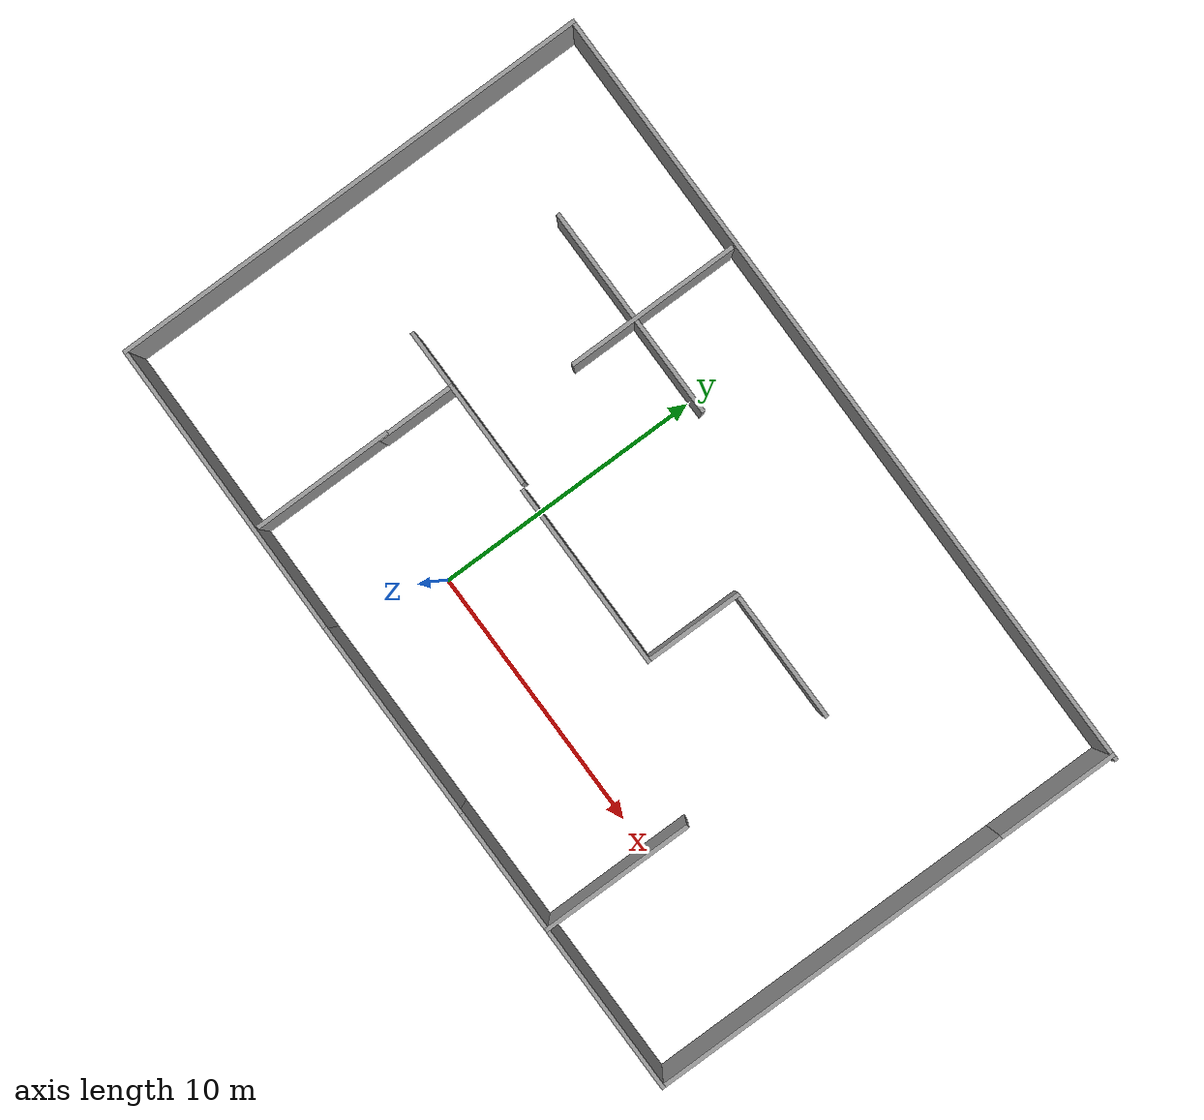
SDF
<?xml version='1.0'?>
<sdf version='1.6'>
  <model name='demo1'>
    <pose frame=''>2.76906 5.13602 0 0 -0 0</pose>
    <link name='Wall_0'>
      <collision name='Wall_0_Collision'>
        <geometry>
          <box>
            <size>7.5 0.15 2.5</size>
          </box>
        </geometry>
        <pose frame=''>0 0 1.25 0 -0 0</pose>
      </collision>
      <visual name='Wall_0_Visual'>
        <pose frame=''>0 0 1.25 0 -0 0</pose>
        <geometry>
          <box>
            <size>7.5 0.15 2.5</size>
          </box>
        </geometry>
        <material>
          <script>
            <uri>file://media/materials/scripts/gazebo.material</uri>
            <name>Gazebo/Grey</name>
          </script>
          <ambient>1 1 1 1</ambient>
        </material>
        <meta>
          <layer>0</layer>
        </meta>
      </visual>
      <pose frame=''>-0.044057 -9.08601 0 0 -0 0</pose>
    </link>
    <link name='Wall_11'>
      <collision name='Wall_11_Collision'>
        <geometry>
          <box>
            <size>7 0.15 2.5</size>
          </box>
        </geometry>
        <pose frame=''>0 0 1.25 0 -0 0</pose>
      </collision>
      <visual name='Wall_11_Visual'>
        <pose frame=''>0 0 1.25 0 -0 0</pose>
        <geometry>
          <box>
            <size>7 0.15 2.5</size>
          </box>
        </geometry>
        <material>
          <script>
            <uri>file://media/materials/scripts/gazebo.material</uri>
            <name>Gazebo/Grey</name>
          </script>
          <ambient>1 1 1 1</ambient>
        </material>
        <meta>
          <layer>0</layer>
        </meta>
      </visual>
      <pose frame=''>-0.119481 -1.25325 0 0 -0 0</pose>
    </link>
    <link name='Wall_12'>
      <collision name='Wall_12_Collision'>
        <geometry>
          <box>
            <size>3.75 0.15 2.5</size>
          </box>
        </geometry>
        <pose frame=''>0 0 1.25 0 -0 0</pose>
      </collision>
      <visual name='Wall_12_Visual'>
        <pose frame=''>0 0 1.25 0 -0 0</pose>
        <geometry>
          <box>
            <size>3.75 0.15 2.5</size>
          </box>
        </geometry>
        <material>
          <script>
            <uri>file://media/materials/scripts/gazebo.material</uri>
            <name>Gazebo/Grey</name>
          </script>
          <ambient>1 1 1 1</ambient>
        </material>
        <meta>
          <layer>0</layer>
        </meta>
      </visual>
      <pose frame=''>3.30552 0.546754 0 0 -0 1.5708</pose>
    </link>
    <link name='Wall_13'>
      <collision name='Wall_13_Collision'>
        <geometry>
          <box>
            <size>5 0.15 2.5</size>
          </box>
        </geometry>
        <pose frame=''>0 0 1.25 0 -0 0</pose>
      </collision>
      <visual name='Wall_13_Visual'>
        <pose frame=''>0 0 1.25 0 -0 0</pose>
        <geometry>
          <box>
            <size>5 0.15 2.5</size>
          </box>
        </geometry>
        <material>
          <script>
            <uri>file://media/materials/scripts/gazebo.material</uri>
            <name>Gazebo/Grey</name>
          </script>
          <ambient>1 1 1 1</ambient>
        </material>
        <meta>
          <layer>0</layer>
        </meta>
      </visual>
      <pose frame=''>5.73052 2.34675 0 0 -0 0</pose>
    </link>
    <link name='Wall_15'>
      <collision name='Wall_15_Collision'>
        <geometry>
          <box>
            <size>5.25 0.15 2.5</size>
          </box>
        </geometry>
        <pose frame=''>0 0 1.25 0 -0 0</pose>
      </collision>
      <visual name='Wall_15_Visual'>
        <pose frame=''>0 0 1.25 0 -0 0</pose>
        <geometry>
          <box>
            <size>5.25 0.15 2.5</size>
          </box>
        </geometry>
        <material>
          <script>
            <uri>file://media/materials/scripts/gazebo.material</uri>
            <name>Gazebo/Grey</name>
          </script>
          <ambient>1 1 1 1</ambient>
        </material>
        <meta>
          <layer>0</layer>
        </meta>
      </visual>
      <pose frame=''>-7.70799 -6.30135 0 0 -0 -1.5708</pose>
    </link>
    <link name='Wall_17'>
      <collision name='Wall_17_Collision'>
        <geometry>
          <box>
            <size>5.75 0.15 2.5</size>
          </box>
        </geometry>
        <pose frame=''>0 0 1.25 0 -0 0</pose>
      </collision>
      <visual name='Wall_17_Visual'>
        <pose frame=''>0 0 1.25 0 -0 0</pose>
        <geometry>
          <box>
            <size>5.75 0.15 2.5</size>
          </box>
        </geometry>
        <material>
          <script>
            <uri>file://media/materials/scripts/gazebo.material</uri>
            <name>Gazebo/Grey</name>
          </script>
          <ambient>1 1 1 1</ambient>
        </material>
        <meta>
          <layer>0</layer>
        </meta>
      </visual>
      <pose frame=''>8.39091 -6.27378 0 0 -0 -1.5708</pose>
    </link>
    <link name='Wall_19'>
      <collision name='Wall_19_Collision'>
        <geometry>
          <box>
            <size>6.5 0.15 2.5</size>
          </box>
        </geometry>
        <pose frame=''>0 0 1.25 0 -0 0</pose>
      </collision>
      <visual name='Wall_19_Visual'>
        <pose frame=''>0 0 1.25 0 -0 0</pose>
        <geometry>
          <box>
            <size>6.5 0.15 2.5</size>
          </box>
        </geometry>
        <material>
          <script>
            <uri>file://media/materials/scripts/gazebo.material</uri>
            <name>Gazebo/Grey</name>
          </script>
          <ambient>1 1 1 1</ambient>
        </material>
        <meta>
          <layer>0</layer>
        </meta>
      </visual>
      <pose frame=''>-5.9038 5.70296 0 0 -0 -1.5708</pose>
    </link>
    <link name='Wall_2'>
      <collision name='Wall_2_Collision'>
        <geometry>
          <box>
            <size>11.25 0.15 2.5</size>
          </box>
        </geometry>
        <pose frame=''>0 0 1.25 0 -0 0</pose>
      </collision>
      <visual name='Wall_2_Visual'>
        <pose frame=''>0 0 1.25 0 -0 0</pose>
        <geometry>
          <box>
            <size>11.25 0.15 2.5</size>
          </box>
        </geometry>
        <material>
          <script>
            <uri>file://media/materials/scripts/gazebo.material</uri>
            <name>Gazebo/Grey</name>
          </script>
          <ambient>1 1 1 1</ambient>
        </material>
        <meta>
          <layer>0</layer>
        </meta>
      </visual>
      <pose frame=''>9.18094 -9.08601 0 0 -0 0</pose>
    </link>
    <link name='Wall_21'>
      <collision name='Wall_21_Collision'>
        <geometry>
          <box>
            <size>4 0.15 2.5</size>
          </box>
        </geometry>
        <pose frame=''>0 0 1.25 0 -0 0</pose>
      </collision>
      <visual name='Wall_21_Visual'>
        <pose frame=''>0 0 1.25 0 -0 0</pose>
        <geometry>
          <box>
            <size>4 0.15 2.5</size>
          </box>
        </geometry>
        <material>
          <script>
            <uri>file://media/materials/scripts/gazebo.material</uri>
            <name>Gazebo/Grey</name>
          </script>
          <ambient>1 1 1 1</ambient>
        </material>
        <meta>
          <layer>0</layer>
        </meta>
      </visual>
      <pose frame=''>-5.74705 -1.11446 0 0 -0 3.14159</pose>
    </link>
    <link name='Wall_22'>
      <collision name='Wall_22_Collision'>
        <geometry>
          <box>
            <size>3 0.15 2.5</size>
          </box>
        </geometry>
        <pose frame=''>0 0 1.25 0 -0 0</pose>
      </collision>
      <visual name='Wall_22_Visual'>
        <pose frame=''>0 0 1.25 0 -0 0</pose>
        <geometry>
          <box>
            <size>3 0.15 2.5</size>
          </box>
        </geometry>
        <material>
          <script>
            <uri>file://media/materials/scripts/gazebo.material</uri>
            <name>Gazebo/Grey</name>
          </script>
          <ambient>1 1 1 1</ambient>
        </material>
        <meta>
          <layer>0</layer>
        </meta>
      </visual>
      <pose frame=''>-7.67205 -2.53946 0 0 -0 -1.5708</pose>
    </link>
    <link name='Wall_24'>
      <collision name='Wall_24_Collision'>
        <geometry>
          <box>
            <size>8 0.15 2.5</size>
          </box>
        </geometry>
        <pose frame=''>0 0 1.25 0 -0 0</pose>
      </collision>
      <visual name='Wall_24_Visual'>
        <pose frame=''>0 0 1.25 0 -0 0</pose>
        <geometry>
          <box>
            <size>8 0.15 2.5</size>
          </box>
        </geometry>
        <material>
          <script>
            <uri>file://media/materials/scripts/gazebo.material</uri>
            <name>Gazebo/Grey</name>
          </script>
          <ambient>1 1 1 1</ambient>
        </material>
        <meta>
          <layer>0</layer>
        </meta>
      </visual>
      <pose frame=''>-6.14231 4.99202 0 0 -0 0</pose>
    </link>
    <link name='Wall_26'>
      <collision name='Wall_26_Collision'>
        <geometry>
          <box>
            <size>2.25 0.15 2.5</size>
          </box>
        </geometry>
        <pose frame=''>0 0 1.25 0 -0 0</pose>
      </collision>
      <visual name='Wall_26_Visual'>
        <pose frame=''>0 0 1.25 0 -0 0</pose>
        <geometry>
          <box>
            <size>2.25 0.15 2.5</size>
          </box>
        </geometry>
        <material>
          <script>
            <uri>file://media/materials/scripts/gazebo.material</uri>
            <name>Gazebo/Grey</name>
          </script>
          <ambient>1 1 1 1</ambient>
        </material>
        <meta>
          <layer>0</layer>
        </meta>
      </visual>
      <pose frame=''>-8.72205 -1.11446 0 0 -0 3.14159</pose>
    </link>
    <link name='Wall_3'>
      <collision name='Wall_3_Collision'>
        <geometry>
          <box>
            <size>13.75 0.15 2.5</size>
          </box>
        </geometry>
        <pose frame=''>0 0 1.25 0 -0 0</pose>
      </collision>
      <visual name='Wall_3_Visual'>
        <pose frame=''>0 0 1.25 0 -0 0</pose>
        <geometry>
          <box>
            <size>13.75 0.15 2.5</size>
          </box>
        </geometry>
        <material>
          <script>
            <uri>file://media/materials/scripts/gazebo.material</uri>
            <name>Gazebo/Grey</name>
          </script>
          <ambient>1 1 1 1</ambient>
        </material>
        <meta>
          <layer>0</layer>
        </meta>
      </visual>
      <pose frame=''>14.7309 -2.28601 0 0 -0 1.5708</pose>
    </link>
    <link name='Wall_5'>
      <collision name='Wall_5_Collision'>
        <geometry>
          <box>
            <size>4.72243 0.15 2.5</size>
          </box>
        </geometry>
        <pose frame=''>0 0 1.25 0 -0 0</pose>
      </collision>
      <visual name='Wall_5_Visual'>
        <pose frame=''>0 0 1.25 0 -0 0</pose>
        <geometry>
          <box>
            <size>4.72243 0.15 2.5</size>
          </box>
        </geometry>
        <material>
          <script>
            <uri>file://media/materials/scripts/gazebo.material</uri>
            <name>Gazebo/Grey</name>
          </script>
          <ambient>1 1 1 1</ambient>
        </material>
        <meta>
          <layer>0</layer>
        </meta>
      </visual>
      <pose frame=''>14.7309 6.8002 0 0 -0 1.5708</pose>
    </link>
    <link name='Wall_6'>
      <collision name='Wall_6_Collision'>
        <geometry>
          <box>
            <size>29.75 0.15 2.5</size>
          </box>
        </geometry>
        <pose frame=''>0 0 1.25 0 -0 0</pose>
      </collision>
      <visual name='Wall_6_Visual'>
        <pose frame=''>0 0 1.25 0 -0 0</pose>
        <geometry>
          <box>
            <size>29.75 0.15 2.5</size>
          </box>
        </geometry>
        <material>
          <script>
            <uri>file://media/materials/scripts/gazebo.material</uri>
            <name>Gazebo/Grey</name>
          </script>
          <ambient>1 1 1 1</ambient>
        </material>
        <meta>
          <layer>0</layer>
        </meta>
      </visual>
      <pose frame=''>0.069727 9.08642 0 0 -0 3.14159</pose>
    </link>
    <link name='Wall_7'>
      <collision name='Wall_7_Collision'>
        <geometry>
          <box>
            <size>18.223 0.15 2.5</size>
          </box>
        </geometry>
        <pose frame=''>0 0 1.25 0 -0 0</pose>
      </collision>
      <visual name='Wall_7_Visual'>
        <pose frame=''>0 0 1.25 0 -0 0</pose>
        <geometry>
          <box>
            <size>18.223 0.15 2.5</size>
          </box>
        </geometry>
        <material>
          <script>
            <uri>file://media/materials/scripts/gazebo.material</uri>
            <name>Gazebo/Grey</name>
          </script>
          <ambient>1 1 1 1</ambient>
        </material>
        <meta>
          <layer>0</layer>
        </meta>
      </visual>
      <pose frame=''>-14.8691 0.050201 0 0 -0 -1.5708</pose>
    </link>
    <link name='Wall_8'>
      <collision name='Wall_8_Collision'>
        <geometry>
          <box>
            <size>11.3004 0.15 2.5</size>
          </box>
        </geometry>
        <pose frame=''>0 0 1.25 0 -0 0</pose>
      </collision>
      <visual name='Wall_8_Visual'>
        <pose frame=''>0 0 1.25 0 -0 0</pose>
        <geometry>
          <box>
            <size>11.3004 0.15 2.5</size>
          </box>
        </geometry>
        <material>
          <script>
            <uri>file://media/materials/scripts/gazebo.material</uri>
            <name>Gazebo/Grey</name>
          </script>
          <ambient>1 1 1 1</ambient>
        </material>
        <meta>
          <layer>0</layer>
        </meta>
      </visual>
      <pose frame=''>-9.29406 -9.03602 0 0 -0 -0.008968</pose>
    </link>
    <static>1</static>
  </model>
</sdf>
